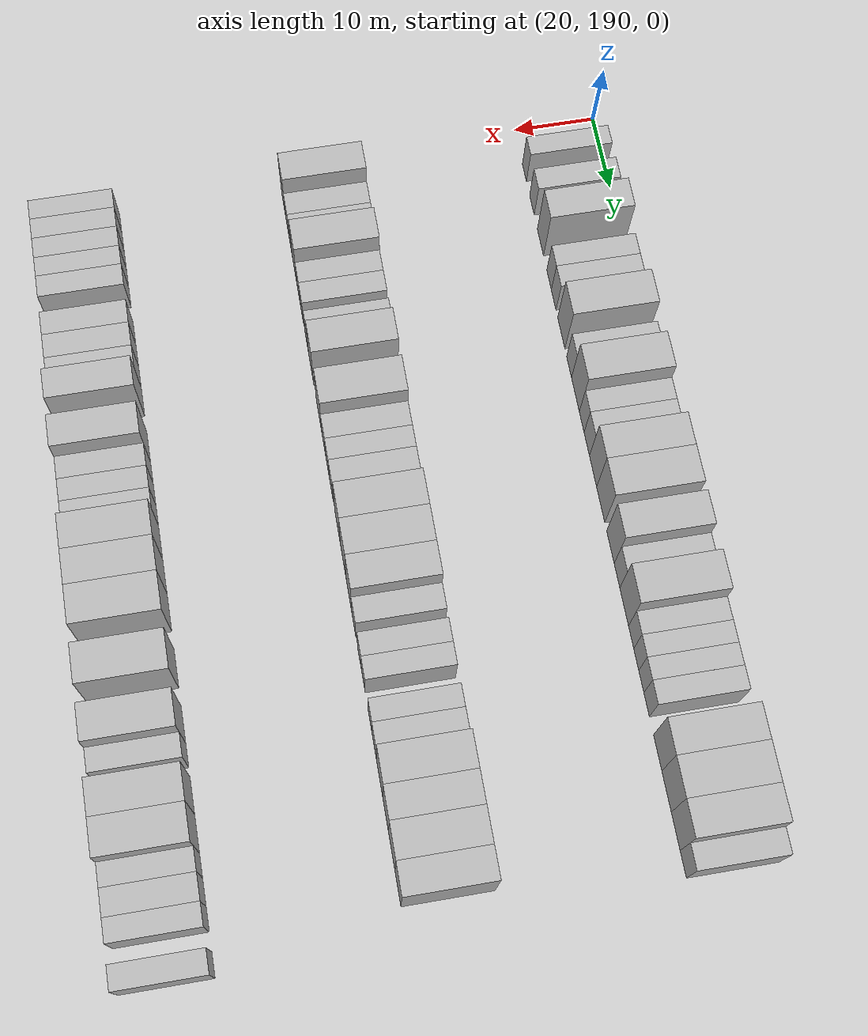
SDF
<sdf version="1.6">
 <world name="default">
  <model name="building_117">
   <static>1</static>
   <pose>25.0000 196.1999 0 0.000000 0.000000 0.000000</pose>
   <link name="link">
    <pose>0 0 3.00 0 0 0</pose>
    <collision name="collision"><geometry><box><size>10.0000 2.5108 6.0000</size></box></geometry></collision>
    <visual name="visual">
     <cast_shadows>0</cast_shadows>
     <geometry><box><size>10.0000 2.5108 6.0000</size></box></geometry>
     <material>
      <script>
       <uri>model://HANNAS_wall/materials/scripts</uri>
       <uri>model://HANNAS_wall/materials/textures</uri>
       <name>vrc/HANNAS_wall</name>
      </script>
     </material>
    </visual>
   </link>
  </model>
  <model name="building_118">
   <static>1</static>
   <pose>25.0000 200.8502 0 0.000000 0.000000 0.000000</pose>
   <link name="link">
    <pose>0 0 3.00 0 0 0</pose>
    <collision name="collision"><geometry><box><size>10.0000 2.7897 6.0000</size></box></geometry></collision>
    <visual name="visual">
     <cast_shadows>0</cast_shadows>
     <geometry><box><size>10.0000 2.7897 6.0000</size></box></geometry>
     <material>
      <script>
       <uri>model://HANNAS_wall/materials/scripts</uri>
       <uri>model://HANNAS_wall/materials/textures</uri>
       <name>vrc/HANNAS_wall</name>
      </script>
     </material>
    </visual>
   </link>
  </model>
  <model name="building_119">
   <static>1</static>
   <pose>25.0000 206.1018 0 0.000000 0.000000 0.000000</pose>
   <link name="link">
    <pose>0 0 4.50 0 0 0</pose>
    <collision name="collision"><geometry><box><size>10.0000 3.7135 9.0000</size></box></geometry></collision>
    <visual name="visual">
     <cast_shadows>0</cast_shadows>
     <geometry><box><size>10.0000 3.7135 9.0000</size></box></geometry>
     <material>
      <script>
       <uri>model://HANNAS_wall/materials/scripts</uri>
       <uri>model://HANNAS_wall/materials/textures</uri>
       <name>vrc/HANNAS_wall</name>
      </script>
     </material>
    </visual>
   </link>
  </model>
  <model name="building_120">
   <static>1</static>
   <pose>25.0000 211.3129 0 0.000000 0.000000 0.000000</pose>
   <link name="link">
    <pose>0 0 3.00 0 0 0</pose>
    <collision name="collision"><geometry><box><size>10.0000 2.7085 6.0000</size></box></geometry></collision>
    <visual name="visual">
     <cast_shadows>0</cast_shadows>
     <geometry><box><size>10.0000 2.7085 6.0000</size></box></geometry>
     <material>
      <script>
       <uri>model://HANNAS_wall/materials/scripts</uri>
       <uri>model://HANNAS_wall/materials/textures</uri>
       <name>vrc/HANNAS_wall</name>
      </script>
     </material>
    </visual>
   </link>
  </model>
  <model name="building_121">
   <static>1</static>
   <pose>25.0000 214.0283 0 0.000000 0.000000 0.000000</pose>
   <link name="link">
    <pose>0 0 3.00 0 0 0</pose>
    <collision name="collision"><geometry><box><size>10.0000 2.7224 6.0000</size></box></geometry></collision>
    <visual name="visual">
     <cast_shadows>0</cast_shadows>
     <geometry><box><size>10.0000 2.7224 6.0000</size></box></geometry>
     <material>
      <script>
       <uri>model://HANNAS_wall/materials/scripts</uri>
       <uri>model://HANNAS_wall/materials/textures</uri>
       <name>vrc/HANNAS_wall</name>
      </script>
     </material>
    </visual>
   </link>
  </model>
  <model name="building_122">
   <static>1</static>
   <pose>25.0000 218.4825 0 0.000000 0.000000 0.000000</pose>
   <link name="link">
    <pose>0 0 4.50 0 0 0</pose>
    <collision name="collision"><geometry><box><size>10.0000 4.1858 9.0000</size></box></geometry></collision>
    <visual name="visual">
     <cast_shadows>0</cast_shadows>
     <geometry><box><size>10.0000 4.1858 9.0000</size></box></geometry>
     <material>
      <script>
       <uri>model://HANNAS_wall/materials/scripts</uri>
       <uri>model://HANNAS_wall/materials/textures</uri>
       <name>vrc/HANNAS_wall</name>
      </script>
     </material>
    </visual>
   </link>
  </model>
  <model name="building_123">
   <static>1</static>
   <pose>25.0000 222.9684 0 0.000000 0.000000 0.000000</pose>
   <link name="link">
    <pose>0 0 3.00 0 0 0</pose>
    <collision name="collision"><geometry><box><size>10.0000 2.7861 6.0000</size></box></geometry></collision>
    <visual name="visual">
     <cast_shadows>0</cast_shadows>
     <geometry><box><size>10.0000 2.7861 6.0000</size></box></geometry>
     <material>
      <script>
       <uri>model://HANNAS_wall/materials/scripts</uri>
       <uri>model://HANNAS_wall/materials/textures</uri>
       <name>vrc/HANNAS_wall</name>
      </script>
     </material>
    </visual>
   </link>
  </model>
  <model name="building_124">
   <static>1</static>
   <pose>25.0000 226.5602 0 0.000000 0.000000 0.000000</pose>
   <link name="link">
    <pose>0 0 4.50 0 0 0</pose>
    <collision name="collision"><geometry><box><size>10.0000 4.3974 9.0000</size></box></geometry></collision>
    <visual name="visual">
     <cast_shadows>0</cast_shadows>
     <geometry><box><size>10.0000 4.3974 9.0000</size></box></geometry>
     <material>
      <script>
       <uri>model://HANNAS_wall/materials/scripts</uri>
       <uri>model://HANNAS_wall/materials/textures</uri>
       <name>vrc/HANNAS_wall</name>
      </script>
     </material>
    </visual>
   </link>
  </model>
  <model name="building_125">
   <static>1</static>
   <pose>25.0000 230.0820 0 0.000000 0.000000 0.000000</pose>
   <link name="link">
    <pose>0 0 3.00 0 0 0</pose>
    <collision name="collision"><geometry><box><size>10.0000 2.6462 6.0000</size></box></geometry></collision>
    <visual name="visual">
     <cast_shadows>0</cast_shadows>
     <geometry><box><size>10.0000 2.6462 6.0000</size></box></geometry>
     <material>
      <script>
       <uri>model://HANNAS_wall/materials/scripts</uri>
       <uri>model://HANNAS_wall/materials/textures</uri>
       <name>vrc/HANNAS_wall</name>
      </script>
     </material>
    </visual>
   </link>
  </model>
  <model name="building_126">
   <static>1</static>
   <pose>25.0000 232.8873 0 0.000000 0.000000 0.000000</pose>
   <link name="link">
    <pose>0 0 3.00 0 0 0</pose>
    <collision name="collision"><geometry><box><size>10.0000 2.9642 6.0000</size></box></geometry></collision>
    <visual name="visual">
     <cast_shadows>0</cast_shadows>
     <geometry><box><size>10.0000 2.9642 6.0000</size></box></geometry>
     <material>
      <script>
       <uri>model://HANNAS_wall/materials/scripts</uri>
       <uri>model://HANNAS_wall/materials/textures</uri>
       <name>vrc/HANNAS_wall</name>
      </script>
     </material>
    </visual>
   </link>
  </model>
  <model name="building_127">
   <static>1</static>
   <pose>25.0000 236.3215 0 0.000000 0.000000 0.000000</pose>
   <link name="link">
    <pose>0 0 4.50 0 0 0</pose>
    <collision name="collision"><geometry><box><size>10.0000 3.9041 9.0000</size></box></geometry></collision>
    <visual name="visual">
     <cast_shadows>0</cast_shadows>
     <geometry><box><size>10.0000 3.9041 9.0000</size></box></geometry>
     <material>
      <script>
       <uri>model://HANNAS_wall/materials/scripts</uri>
       <uri>model://HANNAS_wall/materials/textures</uri>
       <name>vrc/HANNAS_wall</name>
      </script>
     </material>
    </visual>
   </link>
  </model>
  <model name="building_128">
   <static>1</static>
   <pose>25.0000 240.4634 0 0.000000 0.000000 0.000000</pose>
   <link name="link">
    <pose>0 0 4.50 0 0 0</pose>
    <collision name="collision"><geometry><box><size>10.0000 4.3798 9.0000</size></box></geometry></collision>
    <visual name="visual">
     <cast_shadows>0</cast_shadows>
     <geometry><box><size>10.0000 4.3798 9.0000</size></box></geometry>
     <material>
      <script>
       <uri>model://HANNAS_wall/materials/scripts</uri>
       <uri>model://HANNAS_wall/materials/textures</uri>
       <name>vrc/HANNAS_wall</name>
      </script>
     </material>
    </visual>
   </link>
  </model>
  <model name="building_129">
   <static>1</static>
   <pose>25.0000 245.6209 0 0.000000 0.000000 0.000000</pose>
   <link name="link">
    <pose>0 0 4.50 0 0 0</pose>
    <collision name="collision"><geometry><box><size>10.0000 3.9352 9.0000</size></box></geometry></collision>
    <visual name="visual">
     <cast_shadows>0</cast_shadows>
     <geometry><box><size>10.0000 3.9352 9.0000</size></box></geometry>
     <material>
      <script>
       <uri>model://HANNAS_wall/materials/scripts</uri>
       <uri>model://HANNAS_wall/materials/textures</uri>
       <name>vrc/HANNAS_wall</name>
      </script>
     </material>
    </visual>
   </link>
  </model>
  <model name="building_130">
   <static>1</static>
   <pose>25.0000 249.0496 0 0.000000 0.000000 0.000000</pose>
   <link name="link">
    <pose>0 0 3.00 0 0 0</pose>
    <collision name="collision"><geometry><box><size>10.0000 2.9222 6.0000</size></box></geometry></collision>
    <visual name="visual">
     <cast_shadows>0</cast_shadows>
     <geometry><box><size>10.0000 2.9222 6.0000</size></box></geometry>
     <material>
      <script>
       <uri>model://HANNAS_wall/materials/scripts</uri>
       <uri>model://HANNAS_wall/materials/textures</uri>
       <name>vrc/HANNAS_wall</name>
      </script>
     </material>
    </visual>
   </link>
  </model>
  <model name="building_131">
   <static>1</static>
   <pose>25.0000 252.7315 0 0.000000 0.000000 0.000000</pose>
   <link name="link">
    <pose>0 0 4.50 0 0 0</pose>
    <collision name="collision"><geometry><box><size>10.0000 4.4417 9.0000</size></box></geometry></collision>
    <visual name="visual">
     <cast_shadows>0</cast_shadows>
     <geometry><box><size>10.0000 4.4417 9.0000</size></box></geometry>
     <material>
      <script>
       <uri>model://HANNAS_wall/materials/scripts</uri>
       <uri>model://HANNAS_wall/materials/textures</uri>
       <name>vrc/HANNAS_wall</name>
      </script>
     </material>
    </visual>
   </link>
  </model>
  <model name="building_132">
   <static>1</static>
   <pose>25.0000 256.2675 0 0.000000 0.000000 0.000000</pose>
   <link name="link">
    <pose>0 0 3.00 0 0 0</pose>
    <collision name="collision"><geometry><box><size>10.0000 2.6302 6.0000</size></box></geometry></collision>
    <visual name="visual">
     <cast_shadows>0</cast_shadows>
     <geometry><box><size>10.0000 2.6302 6.0000</size></box></geometry>
     <material>
      <script>
       <uri>model://HANNAS_wall/materials/scripts</uri>
       <uri>model://HANNAS_wall/materials/textures</uri>
       <name>vrc/HANNAS_wall</name>
      </script>
     </material>
    </visual>
   </link>
  </model>
  <model name="building_133">
   <static>1</static>
   <pose>25.0000 258.8365 0 0.000000 0.000000 0.000000</pose>
   <link name="link">
    <pose>0 0 3.00 0 0 0</pose>
    <collision name="collision"><geometry><box><size>10.0000 2.5078 6.0000</size></box></geometry></collision>
    <visual name="visual">
     <cast_shadows>0</cast_shadows>
     <geometry><box><size>10.0000 2.5078 6.0000</size></box></geometry>
     <material>
      <script>
       <uri>model://HANNAS_wall/materials/scripts</uri>
       <uri>model://HANNAS_wall/materials/textures</uri>
       <name>vrc/HANNAS_wall</name>
      </script>
     </material>
    </visual>
   </link>
  </model>
  <model name="building_134">
   <static>1</static>
   <pose>25.0000 261.3510 0 0.000000 0.000000 0.000000</pose>
   <link name="link">
    <pose>0 0 3.00 0 0 0</pose>
    <collision name="collision"><geometry><box><size>10.0000 2.5211 6.0000</size></box></geometry></collision>
    <visual name="visual">
     <cast_shadows>0</cast_shadows>
     <geometry><box><size>10.0000 2.5211 6.0000</size></box></geometry>
     <material>
      <script>
       <uri>model://HANNAS_wall/materials/scripts</uri>
       <uri>model://HANNAS_wall/materials/textures</uri>
       <name>vrc/HANNAS_wall</name>
      </script>
     </material>
    </visual>
   </link>
  </model>
  <model name="building_135">
   <static>1</static>
   <pose>25.0000 263.9515 0 0.000000 0.000000 0.000000</pose>
   <link name="link">
    <pose>0 0 3.00 0 0 0</pose>
    <collision name="collision"><geometry><box><size>10.0000 2.6798 6.0000</size></box></geometry></collision>
    <visual name="visual">
     <cast_shadows>0</cast_shadows>
     <geometry><box><size>10.0000 2.6798 6.0000</size></box></geometry>
     <material>
      <script>
       <uri>model://HANNAS_wall/materials/scripts</uri>
       <uri>model://HANNAS_wall/materials/textures</uri>
       <name>vrc/HANNAS_wall</name>
      </script>
     </material>
    </visual>
   </link>
  </model>
  <model name="building_136">
   <static>1</static>
   <pose>25.0000 269.2805 0 0.000000 0.000000 0.000000</pose>
   <link name="link">
    <pose>0 0 4.50 0 0 0</pose>
    <collision name="collision"><geometry><box><size>10.0000 3.9783 9.0000</size></box></geometry></collision>
    <visual name="visual">
     <cast_shadows>0</cast_shadows>
     <geometry><box><size>10.0000 3.9783 9.0000</size></box></geometry>
     <material>
      <script>
       <uri>model://HANNAS_wall/materials/scripts</uri>
       <uri>model://HANNAS_wall/materials/textures</uri>
       <name>vrc/HANNAS_wall</name>
      </script>
     </material>
    </visual>
   </link>
  </model>
  <model name="building_137">
   <static>1</static>
   <pose>25.0000 273.4937 0 0.000000 0.000000 0.000000</pose>
   <link name="link">
    <pose>0 0 4.50 0 0 0</pose>
    <collision name="collision"><geometry><box><size>10.0000 4.4482 9.0000</size></box></geometry></collision>
    <visual name="visual">
     <cast_shadows>0</cast_shadows>
     <geometry><box><size>10.0000 4.4482 9.0000</size></box></geometry>
     <material>
      <script>
       <uri>model://HANNAS_wall/materials/scripts</uri>
       <uri>model://HANNAS_wall/materials/textures</uri>
       <name>vrc/HANNAS_wall</name>
      </script>
     </material>
    </visual>
   </link>
  </model>
  <model name="building_138">
   <static>1</static>
   <pose>25.0000 277.7498 0 0.000000 0.000000 0.000000</pose>
   <link name="link">
    <pose>0 0 4.50 0 0 0</pose>
    <collision name="collision"><geometry><box><size>10.0000 4.0640 9.0000</size></box></geometry></collision>
    <visual name="visual">
     <cast_shadows>0</cast_shadows>
     <geometry><box><size>10.0000 4.0640 9.0000</size></box></geometry>
     <material>
      <script>
       <uri>model://HANNAS_wall/materials/scripts</uri>
       <uri>model://HANNAS_wall/materials/textures</uri>
       <name>vrc/HANNAS_wall</name>
      </script>
     </material>
    </visual>
   </link>
  </model>
  <model name="building_139">
   <static>1</static>
   <pose>25.0000 281.2172 0 0.000000 0.000000 0.000000</pose>
   <link name="link">
    <pose>0 0 3.00 0 0 0</pose>
    <collision name="collision"><geometry><box><size>10.0000 2.8707 6.0000</size></box></geometry></collision>
    <visual name="visual">
     <cast_shadows>0</cast_shadows>
     <geometry><box><size>10.0000 2.8707 6.0000</size></box></geometry>
     <material>
      <script>
       <uri>model://HANNAS_wall/materials/scripts</uri>
       <uri>model://HANNAS_wall/materials/textures</uri>
       <name>vrc/HANNAS_wall</name>
      </script>
     </material>
    </visual>
   </link>
  </model>
  <model name="building_264">
   <static>1</static>
   <pose>55.0000 195.9915 0 0.000000 0.000000 0.000000</pose>
   <link name="link">
    <pose>0 0 4.50 0 0 0</pose>
    <collision name="collision"><geometry><box><size>10.0000 3.6729 9.0000</size></box></geometry></collision>
    <visual name="visual">
     <cast_shadows>0</cast_shadows>
     <geometry><box><size>10.0000 3.6729 9.0000</size></box></geometry>
     <material>
      <script>
       <uri>model://HANNAS_wall/materials/scripts</uri>
       <uri>model://HANNAS_wall/materials/textures</uri>
       <name>vrc/HANNAS_wall</name>
      </script>
     </material>
    </visual>
   </link>
  </model>
  <model name="building_265">
   <static>1</static>
   <pose>55.0000 199.2742 0 0.000000 0.000000 0.000000</pose>
   <link name="link">
    <pose>0 0 3.00 0 0 0</pose>
    <collision name="collision"><geometry><box><size>10.0000 2.8926 6.0000</size></box></geometry></collision>
    <visual name="visual">
     <cast_shadows>0</cast_shadows>
     <geometry><box><size>10.0000 2.8926 6.0000</size></box></geometry>
     <material>
      <script>
       <uri>model://HANNAS_wall/materials/scripts</uri>
       <uri>model://HANNAS_wall/materials/textures</uri>
       <name>vrc/HANNAS_wall</name>
      </script>
     </material>
    </visual>
   </link>
  </model>
  <model name="building_266">
   <static>1</static>
   <pose>55.0000 201.9550 0 0.000000 0.000000 0.000000</pose>
   <link name="link">
    <pose>0 0 3.00 0 0 0</pose>
    <collision name="collision"><geometry><box><size>10.0000 2.4690 6.0000</size></box></geometry></collision>
    <visual name="visual">
     <cast_shadows>0</cast_shadows>
     <geometry><box><size>10.0000 2.4690 6.0000</size></box></geometry>
     <material>
      <script>
       <uri>model://HANNAS_wall/materials/scripts</uri>
       <uri>model://HANNAS_wall/materials/textures</uri>
       <name>vrc/HANNAS_wall</name>
      </script>
     </material>
    </visual>
   </link>
  </model>
  <model name="building_267">
   <static>1</static>
   <pose>55.0000 205.1781 0 0.000000 0.000000 0.000000</pose>
   <link name="link">
    <pose>0 0 4.50 0 0 0</pose>
    <collision name="collision"><geometry><box><size>10.0000 3.9773 9.0000</size></box></geometry></collision>
    <visual name="visual">
     <cast_shadows>0</cast_shadows>
     <geometry><box><size>10.0000 3.9773 9.0000</size></box></geometry>
     <material>
      <script>
       <uri>model://HANNAS_wall/materials/scripts</uri>
       <uri>model://HANNAS_wall/materials/textures</uri>
       <name>vrc/HANNAS_wall</name>
      </script>
     </material>
    </visual>
   </link>
  </model>
  <model name="building_268">
   <static>1</static>
   <pose>55.0000 208.5109 0 0.000000 0.000000 0.000000</pose>
   <link name="link">
    <pose>0 0 3.00 0 0 0</pose>
    <collision name="collision"><geometry><box><size>10.0000 2.6882 6.0000</size></box></geometry></collision>
    <visual name="visual">
     <cast_shadows>0</cast_shadows>
     <geometry><box><size>10.0000 2.6882 6.0000</size></box></geometry>
     <material>
      <script>
       <uri>model://HANNAS_wall/materials/scripts</uri>
       <uri>model://HANNAS_wall/materials/textures</uri>
       <name>vrc/HANNAS_wall</name>
      </script>
     </material>
    </visual>
   </link>
  </model>
  <model name="building_269">
   <static>1</static>
   <pose>55.0000 211.1974 0 0.000000 0.000000 0.000000</pose>
   <link name="link">
    <pose>0 0 3.00 0 0 0</pose>
    <collision name="collision"><geometry><box><size>10.0000 2.6848 6.0000</size></box></geometry></collision>
    <visual name="visual">
     <cast_shadows>0</cast_shadows>
     <geometry><box><size>10.0000 2.6848 6.0000</size></box></geometry>
     <material>
      <script>
       <uri>model://HANNAS_wall/materials/scripts</uri>
       <uri>model://HANNAS_wall/materials/textures</uri>
       <name>vrc/HANNAS_wall</name>
      </script>
     </material>
    </visual>
   </link>
  </model>
  <model name="building_270">
   <static>1</static>
   <pose>55.0000 214.9309 0 0.000000 0.000000 0.000000</pose>
   <link name="link">
    <pose>0 0 3.00 0 0 0</pose>
    <collision name="collision"><geometry><box><size>10.0000 2.7822 6.0000</size></box></geometry></collision>
    <visual name="visual">
     <cast_shadows>0</cast_shadows>
     <geometry><box><size>10.0000 2.7822 6.0000</size></box></geometry>
     <material>
      <script>
       <uri>model://HANNAS_wall/materials/scripts</uri>
       <uri>model://HANNAS_wall/materials/textures</uri>
       <name>vrc/HANNAS_wall</name>
      </script>
     </material>
    </visual>
   </link>
  </model>
  <model name="building_271">
   <static>1</static>
   <pose>55.0000 218.3244 0 0.000000 0.000000 0.000000</pose>
   <link name="link">
    <pose>0 0 4.50 0 0 0</pose>
    <collision name="collision"><geometry><box><size>10.0000 4.0047 9.0000</size></box></geometry></collision>
    <visual name="visual">
     <cast_shadows>0</cast_shadows>
     <geometry><box><size>10.0000 4.0047 9.0000</size></box></geometry>
     <material>
      <script>
       <uri>model://HANNAS_wall/materials/scripts</uri>
       <uri>model://HANNAS_wall/materials/textures</uri>
       <name>vrc/HANNAS_wall</name>
      </script>
     </material>
    </visual>
   </link>
  </model>
  <model name="building_272">
   <static>1</static>
   <pose>55.0000 224.4998 0 0.000000 0.000000 0.000000</pose>
   <link name="link">
    <pose>0 0 4.50 0 0 0</pose>
    <collision name="collision"><geometry><box><size>10.0000 4.3461 9.0000</size></box></geometry></collision>
    <visual name="visual">
     <cast_shadows>0</cast_shadows>
     <geometry><box><size>10.0000 4.3461 9.0000</size></box></geometry>
     <material>
      <script>
       <uri>model://HANNAS_wall/materials/scripts</uri>
       <uri>model://HANNAS_wall/materials/textures</uri>
       <name>vrc/HANNAS_wall</name>
      </script>
     </material>
    </visual>
   </link>
  </model>
  <model name="building_273">
   <static>1</static>
   <pose>55.0000 228.1534 0 0.000000 0.000000 0.000000</pose>
   <link name="link">
    <pose>0 0 3.00 0 0 0</pose>
    <collision name="collision"><geometry><box><size>10.0000 2.9610 6.0000</size></box></geometry></collision>
    <visual name="visual">
     <cast_shadows>0</cast_shadows>
     <geometry><box><size>10.0000 2.9610 6.0000</size></box></geometry>
     <material>
      <script>
       <uri>model://HANNAS_wall/materials/scripts</uri>
       <uri>model://HANNAS_wall/materials/textures</uri>
       <name>vrc/HANNAS_wall</name>
      </script>
     </material>
    </visual>
   </link>
  </model>
  <model name="building_274">
   <static>1</static>
   <pose>55.0000 230.9349 0 0.000000 0.000000 0.000000</pose>
   <link name="link">
    <pose>0 0 3.00 0 0 0</pose>
    <collision name="collision"><geometry><box><size>10.0000 2.6020 6.0000</size></box></geometry></collision>
    <visual name="visual">
     <cast_shadows>0</cast_shadows>
     <geometry><box><size>10.0000 2.6020 6.0000</size></box></geometry>
     <material>
      <script>
       <uri>model://HANNAS_wall/materials/scripts</uri>
       <uri>model://HANNAS_wall/materials/textures</uri>
       <name>vrc/HANNAS_wall</name>
      </script>
     </material>
    </visual>
   </link>
  </model>
  <model name="building_275">
   <static>1</static>
   <pose>55.0000 233.6565 0 0.000000 0.000000 0.000000</pose>
   <link name="link">
    <pose>0 0 3.00 0 0 0</pose>
    <collision name="collision"><geometry><box><size>10.0000 2.8411 6.0000</size></box></geometry></collision>
    <visual name="visual">
     <cast_shadows>0</cast_shadows>
     <geometry><box><size>10.0000 2.8411 6.0000</size></box></geometry>
     <material>
      <script>
       <uri>model://HANNAS_wall/materials/scripts</uri>
       <uri>model://HANNAS_wall/materials/textures</uri>
       <name>vrc/HANNAS_wall</name>
      </script>
     </material>
    </visual>
   </link>
  </model>
  <model name="building_276">
   <static>1</static>
   <pose>55.0000 238.1700 0 0.000000 0.000000 0.000000</pose>
   <link name="link">
    <pose>0 0 4.50 0 0 0</pose>
    <collision name="collision"><geometry><box><size>10.0000 4.1860 9.0000</size></box></geometry></collision>
    <visual name="visual">
     <cast_shadows>0</cast_shadows>
     <geometry><box><size>10.0000 4.1860 9.0000</size></box></geometry>
     <material>
      <script>
       <uri>model://HANNAS_wall/materials/scripts</uri>
       <uri>model://HANNAS_wall/materials/textures</uri>
       <name>vrc/HANNAS_wall</name>
      </script>
     </material>
    </visual>
   </link>
  </model>
  <model name="building_277">
   <static>1</static>
   <pose>55.0000 242.3569 0 0.000000 0.000000 0.000000</pose>
   <link name="link">
    <pose>0 0 4.50 0 0 0</pose>
    <collision name="collision"><geometry><box><size>10.0000 4.1878 9.0000</size></box></geometry></collision>
    <visual name="visual">
     <cast_shadows>0</cast_shadows>
     <geometry><box><size>10.0000 4.1878 9.0000</size></box></geometry>
     <material>
      <script>
       <uri>model://HANNAS_wall/materials/scripts</uri>
       <uri>model://HANNAS_wall/materials/textures</uri>
       <name>vrc/HANNAS_wall</name>
      </script>
     </material>
    </visual>
   </link>
  </model>
  <model name="building_278">
   <static>1</static>
   <pose>55.0000 246.3978 0 0.000000 0.000000 0.000000</pose>
   <link name="link">
    <pose>0 0 4.50 0 0 0</pose>
    <collision name="collision"><geometry><box><size>10.0000 3.8940 9.0000</size></box></geometry></collision>
    <visual name="visual">
     <cast_shadows>0</cast_shadows>
     <geometry><box><size>10.0000 3.8940 9.0000</size></box></geometry>
     <material>
      <script>
       <uri>model://HANNAS_wall/materials/scripts</uri>
       <uri>model://HANNAS_wall/materials/textures</uri>
       <name>vrc/HANNAS_wall</name>
      </script>
     </material>
    </visual>
   </link>
  </model>
  <model name="building_279">
   <static>1</static>
   <pose>55.0000 249.8201 0 0.000000 0.000000 0.000000</pose>
   <link name="link">
    <pose>0 0 3.00 0 0 0</pose>
    <collision name="collision"><geometry><box><size>10.0000 2.9507 6.0000</size></box></geometry></collision>
    <visual name="visual">
     <cast_shadows>0</cast_shadows>
     <geometry><box><size>10.0000 2.9507 6.0000</size></box></geometry>
     <material>
      <script>
       <uri>model://HANNAS_wall/materials/scripts</uri>
       <uri>model://HANNAS_wall/materials/textures</uri>
       <name>vrc/HANNAS_wall</name>
      </script>
     </material>
    </visual>
   </link>
  </model>
  <model name="building_280">
   <static>1</static>
   <pose>55.0000 253.6281 0 0.000000 0.000000 0.000000</pose>
   <link name="link">
    <pose>0 0 3.00 0 0 0</pose>
    <collision name="collision"><geometry><box><size>10.0000 2.6652 6.0000</size></box></geometry></collision>
    <visual name="visual">
     <cast_shadows>0</cast_shadows>
     <geometry><box><size>10.0000 2.6652 6.0000</size></box></geometry>
     <material>
      <script>
       <uri>model://HANNAS_wall/materials/scripts</uri>
       <uri>model://HANNAS_wall/materials/textures</uri>
       <name>vrc/HANNAS_wall</name>
      </script>
     </material>
    </visual>
   </link>
  </model>
  <model name="building_281">
   <static>1</static>
   <pose>55.0000 256.2607 0 0.000000 0.000000 0.000000</pose>
   <link name="link">
    <pose>0 0 3.00 0 0 0</pose>
    <collision name="collision"><geometry><box><size>10.0000 2.6000 6.0000</size></box></geometry></collision>
    <visual name="visual">
     <cast_shadows>0</cast_shadows>
     <geometry><box><size>10.0000 2.6000 6.0000</size></box></geometry>
     <material>
      <script>
       <uri>model://HANNAS_wall/materials/scripts</uri>
       <uri>model://HANNAS_wall/materials/textures</uri>
       <name>vrc/HANNAS_wall</name>
      </script>
     </material>
    </visual>
   </link>
  </model>
  <model name="building_282">
   <static>1</static>
   <pose>55.0000 260.8462 0 0.000000 0.000000 0.000000</pose>
   <link name="link">
    <pose>0 0 3.00 0 0 0</pose>
    <collision name="collision"><geometry><box><size>10.0000 2.5711 6.0000</size></box></geometry></collision>
    <visual name="visual">
     <cast_shadows>0</cast_shadows>
     <geometry><box><size>10.0000 2.5711 6.0000</size></box></geometry>
     <material>
      <script>
       <uri>model://HANNAS_wall/materials/scripts</uri>
       <uri>model://HANNAS_wall/materials/textures</uri>
       <name>vrc/HANNAS_wall</name>
      </script>
     </material>
    </visual>
   </link>
  </model>
  <model name="building_283">
   <static>1</static>
   <pose>55.0000 263.6288 0 0.000000 0.000000 0.000000</pose>
   <link name="link">
    <pose>0 0 3.00 0 0 0</pose>
    <collision name="collision"><geometry><box><size>10.0000 2.9941 6.0000</size></box></geometry></collision>
    <visual name="visual">
     <cast_shadows>0</cast_shadows>
     <geometry><box><size>10.0000 2.9941 6.0000</size></box></geometry>
     <material>
      <script>
       <uri>model://HANNAS_wall/materials/scripts</uri>
       <uri>model://HANNAS_wall/materials/textures</uri>
       <name>vrc/HANNAS_wall</name>
      </script>
     </material>
    </visual>
   </link>
  </model>
  <model name="building_284">
   <static>1</static>
   <pose>55.0000 267.1862 0 0.000000 0.000000 0.000000</pose>
   <link name="link">
    <pose>0 0 4.50 0 0 0</pose>
    <collision name="collision"><geometry><box><size>10.0000 4.1207 9.0000</size></box></geometry></collision>
    <visual name="visual">
     <cast_shadows>0</cast_shadows>
     <geometry><box><size>10.0000 4.1207 9.0000</size></box></geometry>
     <material>
      <script>
       <uri>model://HANNAS_wall/materials/scripts</uri>
       <uri>model://HANNAS_wall/materials/textures</uri>
       <name>vrc/HANNAS_wall</name>
      </script>
     </material>
    </visual>
   </link>
  </model>
  <model name="building_285">
   <static>1</static>
   <pose>55.0000 271.0863 0 0.000000 0.000000 0.000000</pose>
   <link name="link">
    <pose>0 0 4.50 0 0 0</pose>
    <collision name="collision"><geometry><box><size>10.0000 3.6795 9.0000</size></box></geometry></collision>
    <visual name="visual">
     <cast_shadows>0</cast_shadows>
     <geometry><box><size>10.0000 3.6795 9.0000</size></box></geometry>
     <material>
      <script>
       <uri>model://HANNAS_wall/materials/scripts</uri>
       <uri>model://HANNAS_wall/materials/textures</uri>
       <name>vrc/HANNAS_wall</name>
      </script>
     </material>
    </visual>
   </link>
  </model>
  <model name="building_286">
   <static>1</static>
   <pose>55.0000 274.9385 0 0.000000 0.000000 0.000000</pose>
   <link name="link">
    <pose>0 0 4.50 0 0 0</pose>
    <collision name="collision"><geometry><box><size>10.0000 4.0249 9.0000</size></box></geometry></collision>
    <visual name="visual">
     <cast_shadows>0</cast_shadows>
     <geometry><box><size>10.0000 4.0249 9.0000</size></box></geometry>
     <material>
      <script>
       <uri>model://HANNAS_wall/materials/scripts</uri>
       <uri>model://HANNAS_wall/materials/textures</uri>
       <name>vrc/HANNAS_wall</name>
      </script>
     </material>
    </visual>
   </link>
  </model>
  <model name="building_287">
   <static>1</static>
   <pose>55.0000 278.7676 0 0.000000 0.000000 0.000000</pose>
   <link name="link">
    <pose>0 0 4.50 0 0 0</pose>
    <collision name="collision"><geometry><box><size>10.0000 3.6335 9.0000</size></box></geometry></collision>
    <visual name="visual">
     <cast_shadows>0</cast_shadows>
     <geometry><box><size>10.0000 3.6335 9.0000</size></box></geometry>
     <material>
      <script>
       <uri>model://HANNAS_wall/materials/scripts</uri>
       <uri>model://HANNAS_wall/materials/textures</uri>
       <name>vrc/HANNAS_wall</name>
      </script>
     </material>
    </visual>
   </link>
  </model>
  <model name="building_412">
   <static>1</static>
   <pose>85.0000 195.0736 0 0.000000 0.000000 0.000000</pose>
   <link name="link">
    <pose>0 0 3.00 0 0 0</pose>
    <collision name="collision"><geometry><box><size>10.0000 2.5183 6.0000</size></box></geometry></collision>
    <visual name="visual">
     <cast_shadows>0</cast_shadows>
     <geometry><box><size>10.0000 2.5183 6.0000</size></box></geometry>
     <material>
      <script>
       <uri>model://HANNAS_wall/materials/scripts</uri>
       <uri>model://HANNAS_wall/materials/textures</uri>
       <name>vrc/HANNAS_wall</name>
      </script>
     </material>
    </visual>
   </link>
  </model>
  <model name="building_413">
   <static>1</static>
   <pose>85.0000 197.6329 0 0.000000 0.000000 0.000000</pose>
   <link name="link">
    <pose>0 0 3.00 0 0 0</pose>
    <collision name="collision"><geometry><box><size>10.0000 2.6001 6.0000</size></box></geometry></collision>
    <visual name="visual">
     <cast_shadows>0</cast_shadows>
     <geometry><box><size>10.0000 2.6001 6.0000</size></box></geometry>
     <material>
      <script>
       <uri>model://HANNAS_wall/materials/scripts</uri>
       <uri>model://HANNAS_wall/materials/textures</uri>
       <name>vrc/HANNAS_wall</name>
      </script>
     </material>
    </visual>
   </link>
  </model>
  <model name="building_414">
   <static>1</static>
   <pose>85.0000 200.2308 0 0.000000 0.000000 0.000000</pose>
   <link name="link">
    <pose>0 0 3.00 0 0 0</pose>
    <collision name="collision"><geometry><box><size>10.0000 2.5957 6.0000</size></box></geometry></collision>
    <visual name="visual">
     <cast_shadows>0</cast_shadows>
     <geometry><box><size>10.0000 2.5957 6.0000</size></box></geometry>
     <material>
      <script>
       <uri>model://HANNAS_wall/materials/scripts</uri>
       <uri>model://HANNAS_wall/materials/textures</uri>
       <name>vrc/HANNAS_wall</name>
      </script>
     </material>
    </visual>
   </link>
  </model>
  <model name="building_415">
   <static>1</static>
   <pose>85.0000 202.7539 0 0.000000 0.000000 0.000000</pose>
   <link name="link">
    <pose>0 0 3.00 0 0 0</pose>
    <collision name="collision"><geometry><box><size>10.0000 2.4505 6.0000</size></box></geometry></collision>
    <visual name="visual">
     <cast_shadows>0</cast_shadows>
     <geometry><box><size>10.0000 2.4505 6.0000</size></box></geometry>
     <material>
      <script>
       <uri>model://HANNAS_wall/materials/scripts</uri>
       <uri>model://HANNAS_wall/materials/textures</uri>
       <name>vrc/HANNAS_wall</name>
      </script>
     </material>
    </visual>
   </link>
  </model>
  <model name="building_416">
   <static>1</static>
   <pose>85.0000 205.3350 0 0.000000 0.000000 0.000000</pose>
   <link name="link">
    <pose>0 0 3.00 0 0 0</pose>
    <collision name="collision"><geometry><box><size>10.0000 2.7116 6.0000</size></box></geometry></collision>
    <visual name="visual">
     <cast_shadows>0</cast_shadows>
     <geometry><box><size>10.0000 2.7116 6.0000</size></box></geometry>
     <material>
      <script>
       <uri>model://HANNAS_wall/materials/scripts</uri>
       <uri>model://HANNAS_wall/materials/textures</uri>
       <name>vrc/HANNAS_wall</name>
      </script>
     </material>
    </visual>
   </link>
  </model>
  <model name="building_417">
   <static>1</static>
   <pose>85.0000 210.1547 0 0.000000 0.000000 0.000000</pose>
   <link name="link">
    <pose>0 0 3.00 0 0 0</pose>
    <collision name="collision"><geometry><box><size>10.0000 2.9279 6.0000</size></box></geometry></collision>
    <visual name="visual">
     <cast_shadows>0</cast_shadows>
     <geometry><box><size>10.0000 2.9279 6.0000</size></box></geometry>
     <material>
      <script>
       <uri>model://HANNAS_wall/materials/scripts</uri>
       <uri>model://HANNAS_wall/materials/textures</uri>
       <name>vrc/HANNAS_wall</name>
      </script>
     </material>
    </visual>
   </link>
  </model>
  <model name="building_418">
   <static>1</static>
   <pose>85.0000 213.0987 0 0.000000 0.000000 0.000000</pose>
   <link name="link">
    <pose>0 0 3.00 0 0 0</pose>
    <collision name="collision"><geometry><box><size>10.0000 2.9601 6.0000</size></box></geometry></collision>
    <visual name="visual">
     <cast_shadows>0</cast_shadows>
     <geometry><box><size>10.0000 2.9601 6.0000</size></box></geometry>
     <material>
      <script>
       <uri>model://HANNAS_wall/materials/scripts</uri>
       <uri>model://HANNAS_wall/materials/textures</uri>
       <name>vrc/HANNAS_wall</name>
      </script>
     </material>
    </visual>
   </link>
  </model>
  <model name="building_419">
   <static>1</static>
   <pose>85.0000 215.9820 0 0.000000 0.000000 0.000000</pose>
   <link name="link">
    <pose>0 0 3.00 0 0 0</pose>
    <collision name="collision"><geometry><box><size>10.0000 2.8066 6.0000</size></box></geometry></collision>
    <visual name="visual">
     <cast_shadows>0</cast_shadows>
     <geometry><box><size>10.0000 2.8066 6.0000</size></box></geometry>
     <material>
      <script>
       <uri>model://HANNAS_wall/materials/scripts</uri>
       <uri>model://HANNAS_wall/materials/textures</uri>
       <name>vrc/HANNAS_wall</name>
      </script>
     </material>
    </visual>
   </link>
  </model>
  <model name="building_420">
   <static>1</static>
   <pose>85.0000 219.1917 0 0.000000 0.000000 0.000000</pose>
   <link name="link">
    <pose>0 0 4.50 0 0 0</pose>
    <collision name="collision"><geometry><box><size>10.0000 3.6126 9.0000</size></box></geometry></collision>
    <visual name="visual">
     <cast_shadows>0</cast_shadows>
     <geometry><box><size>10.0000 3.6126 9.0000</size></box></geometry>
     <material>
      <script>
       <uri>model://HANNAS_wall/materials/scripts</uri>
       <uri>model://HANNAS_wall/materials/textures</uri>
       <name>vrc/HANNAS_wall</name>
      </script>
     </material>
    </visual>
   </link>
  </model>
  <model name="building_421">
   <static>1</static>
   <pose>85.0000 224.9136 0 0.000000 0.000000 0.000000</pose>
   <link name="link">
    <pose>0 0 4.50 0 0 0</pose>
    <collision name="collision"><geometry><box><size>10.0000 3.8313 9.0000</size></box></geometry></collision>
    <visual name="visual">
     <cast_shadows>0</cast_shadows>
     <geometry><box><size>10.0000 3.8313 9.0000</size></box></geometry>
     <material>
      <script>
       <uri>model://HANNAS_wall/materials/scripts</uri>
       <uri>model://HANNAS_wall/materials/textures</uri>
       <name>vrc/HANNAS_wall</name>
      </script>
     </material>
    </visual>
   </link>
  </model>
  <model name="building_422">
   <static>1</static>
   <pose>85.0000 228.1754 0 0.000000 0.000000 0.000000</pose>
   <link name="link">
    <pose>0 0 3.00 0 0 0</pose>
    <collision name="collision"><geometry><box><size>10.0000 2.6923 6.0000</size></box></geometry></collision>
    <visual name="visual">
     <cast_shadows>0</cast_shadows>
     <geometry><box><size>10.0000 2.6923 6.0000</size></box></geometry>
     <material>
      <script>
       <uri>model://HANNAS_wall/materials/scripts</uri>
       <uri>model://HANNAS_wall/materials/textures</uri>
       <name>vrc/HANNAS_wall</name>
      </script>
     </material>
    </visual>
   </link>
  </model>
  <model name="building_423">
   <static>1</static>
   <pose>85.0000 230.8492 0 0.000000 0.000000 0.000000</pose>
   <link name="link">
    <pose>0 0 3.00 0 0 0</pose>
    <collision name="collision"><geometry><box><size>10.0000 2.6553 6.0000</size></box></geometry></collision>
    <visual name="visual">
     <cast_shadows>0</cast_shadows>
     <geometry><box><size>10.0000 2.6553 6.0000</size></box></geometry>
     <material>
      <script>
       <uri>model://HANNAS_wall/materials/scripts</uri>
       <uri>model://HANNAS_wall/materials/textures</uri>
       <name>vrc/HANNAS_wall</name>
      </script>
     </material>
    </visual>
   </link>
  </model>
  <model name="building_424">
   <static>1</static>
   <pose>85.0000 233.4393 0 0.000000 0.000000 0.000000</pose>
   <link name="link">
    <pose>0 0 3.00 0 0 0</pose>
    <collision name="collision"><geometry><box><size>10.0000 2.5250 6.0000</size></box></geometry></collision>
    <visual name="visual">
     <cast_shadows>0</cast_shadows>
     <geometry><box><size>10.0000 2.5250 6.0000</size></box></geometry>
     <material>
      <script>
       <uri>model://HANNAS_wall/materials/scripts</uri>
       <uri>model://HANNAS_wall/materials/textures</uri>
       <name>vrc/HANNAS_wall</name>
      </script>
     </material>
    </visual>
   </link>
  </model>
  <model name="building_425">
   <static>1</static>
   <pose>85.0000 236.7359 0 0.000000 0.000000 0.000000</pose>
   <link name="link">
    <pose>0 0 4.50 0 0 0</pose>
    <collision name="collision"><geometry><box><size>10.0000 4.0682 9.0000</size></box></geometry></collision>
    <visual name="visual">
     <cast_shadows>0</cast_shadows>
     <geometry><box><size>10.0000 4.0682 9.0000</size></box></geometry>
     <material>
      <script>
       <uri>model://HANNAS_wall/materials/scripts</uri>
       <uri>model://HANNAS_wall/materials/textures</uri>
       <name>vrc/HANNAS_wall</name>
      </script>
     </material>
    </visual>
   </link>
  </model>
  <model name="building_426">
   <static>1</static>
   <pose>85.0000 240.7904 0 0.000000 0.000000 0.000000</pose>
   <link name="link">
    <pose>0 0 4.50 0 0 0</pose>
    <collision name="collision"><geometry><box><size>10.0000 4.0407 9.0000</size></box></geometry></collision>
    <visual name="visual">
     <cast_shadows>0</cast_shadows>
     <geometry><box><size>10.0000 4.0407 9.0000</size></box></geometry>
     <material>
      <script>
       <uri>model://HANNAS_wall/materials/scripts</uri>
       <uri>model://HANNAS_wall/materials/textures</uri>
       <name>vrc/HANNAS_wall</name>
      </script>
     </material>
    </visual>
   </link>
  </model>
  <model name="building_427">
   <static>1</static>
   <pose>85.0000 245.0192 0 0.000000 0.000000 0.000000</pose>
   <link name="link">
    <pose>0 0 4.50 0 0 0</pose>
    <collision name="collision"><geometry><box><size>10.0000 4.4170 9.0000</size></box></geometry></collision>
    <visual name="visual">
     <cast_shadows>0</cast_shadows>
     <geometry><box><size>10.0000 4.4170 9.0000</size></box></geometry>
     <material>
      <script>
       <uri>model://HANNAS_wall/materials/scripts</uri>
       <uri>model://HANNAS_wall/materials/textures</uri>
       <name>vrc/HANNAS_wall</name>
      </script>
     </material>
    </visual>
   </link>
  </model>
  <model name="building_428">
   <static>1</static>
   <pose>85.0000 251.4660 0 0.000000 0.000000 0.000000</pose>
   <link name="link">
    <pose>0 0 4.50 0 0 0</pose>
    <collision name="collision"><geometry><box><size>10.0000 4.4767 9.0000</size></box></geometry></collision>
    <visual name="visual">
     <cast_shadows>0</cast_shadows>
     <geometry><box><size>10.0000 4.4767 9.0000</size></box></geometry>
     <material>
      <script>
       <uri>model://HANNAS_wall/materials/scripts</uri>
       <uri>model://HANNAS_wall/materials/textures</uri>
       <name>vrc/HANNAS_wall</name>
      </script>
     </material>
    </visual>
   </link>
  </model>
  <model name="building_429">
   <static>1</static>
   <pose>85.0000 257.7684 0 0.000000 0.000000 0.000000</pose>
   <link name="link">
    <pose>0 0 4.50 0 0 0</pose>
    <collision name="collision"><geometry><box><size>10.0000 4.1280 9.0000</size></box></geometry></collision>
    <visual name="visual">
     <cast_shadows>0</cast_shadows>
     <geometry><box><size>10.0000 4.1280 9.0000</size></box></geometry>
     <material>
      <script>
       <uri>model://HANNAS_wall/materials/scripts</uri>
       <uri>model://HANNAS_wall/materials/textures</uri>
       <name>vrc/HANNAS_wall</name>
      </script>
     </material>
    </visual>
   </link>
  </model>
  <model name="building_430">
   <static>1</static>
   <pose>85.0000 261.1764 0 0.000000 0.000000 0.000000</pose>
   <link name="link">
    <pose>0 0 3.00 0 0 0</pose>
    <collision name="collision"><geometry><box><size>10.0000 2.6881 6.0000</size></box></geometry></collision>
    <visual name="visual">
     <cast_shadows>0</cast_shadows>
     <geometry><box><size>10.0000 2.6881 6.0000</size></box></geometry>
     <material>
      <script>
       <uri>model://HANNAS_wall/materials/scripts</uri>
       <uri>model://HANNAS_wall/materials/textures</uri>
       <name>vrc/HANNAS_wall</name>
      </script>
     </material>
    </visual>
   </link>
  </model>
  <model name="building_431">
   <static>1</static>
   <pose>85.0000 265.5403 0 0.000000 0.000000 0.000000</pose>
   <link name="link">
    <pose>0 0 4.50 0 0 0</pose>
    <collision name="collision"><geometry><box><size>10.0000 4.0398 9.0000</size></box></geometry></collision>
    <visual name="visual">
     <cast_shadows>0</cast_shadows>
     <geometry><box><size>10.0000 4.0398 9.0000</size></box></geometry>
     <material>
      <script>
       <uri>model://HANNAS_wall/materials/scripts</uri>
       <uri>model://HANNAS_wall/materials/textures</uri>
       <name>vrc/HANNAS_wall</name>
      </script>
     </material>
    </visual>
   </link>
  </model>
  <model name="building_432">
   <static>1</static>
   <pose>85.0000 269.6225 0 0.000000 0.000000 0.000000</pose>
   <link name="link">
    <pose>0 0 4.50 0 0 0</pose>
    <collision name="collision"><geometry><box><size>10.0000 4.1245 9.0000</size></box></geometry></collision>
    <visual name="visual">
     <cast_shadows>0</cast_shadows>
     <geometry><box><size>10.0000 4.1245 9.0000</size></box></geometry>
     <material>
      <script>
       <uri>model://HANNAS_wall/materials/scripts</uri>
       <uri>model://HANNAS_wall/materials/textures</uri>
       <name>vrc/HANNAS_wall</name>
      </script>
     </material>
    </visual>
   </link>
  </model>
  <model name="building_433">
   <static>1</static>
   <pose>85.0000 272.9823 0 0.000000 0.000000 0.000000</pose>
   <link name="link">
    <pose>0 0 3.00 0 0 0</pose>
    <collision name="collision"><geometry><box><size>10.0000 2.5952 6.0000</size></box></geometry></collision>
    <visual name="visual">
     <cast_shadows>0</cast_shadows>
     <geometry><box><size>10.0000 2.5952 6.0000</size></box></geometry>
     <material>
      <script>
       <uri>model://HANNAS_wall/materials/scripts</uri>
       <uri>model://HANNAS_wall/materials/textures</uri>
       <name>vrc/HANNAS_wall</name>
      </script>
     </material>
    </visual>
   </link>
  </model>
  <model name="building_434">
   <static>1</static>
   <pose>85.0000 275.7587 0 0.000000 0.000000 0.000000</pose>
   <link name="link">
    <pose>0 0 3.00 0 0 0</pose>
    <collision name="collision"><geometry><box><size>10.0000 2.9576 6.0000</size></box></geometry></collision>
    <visual name="visual">
     <cast_shadows>0</cast_shadows>
     <geometry><box><size>10.0000 2.9576 6.0000</size></box></geometry>
     <material>
      <script>
       <uri>model://HANNAS_wall/materials/scripts</uri>
       <uri>model://HANNAS_wall/materials/textures</uri>
       <name>vrc/HANNAS_wall</name>
      </script>
     </material>
    </visual>
   </link>
  </model>
  <model name="building_435">
   <static>1</static>
   <pose>85.0000 278.5249 0 0.000000 0.000000 0.000000</pose>
   <link name="link">
    <pose>0 0 3.00 0 0 0</pose>
    <collision name="collision"><geometry><box><size>10.0000 2.5748 6.0000</size></box></geometry></collision>
    <visual name="visual">
     <cast_shadows>0</cast_shadows>
     <geometry><box><size>10.0000 2.5748 6.0000</size></box></geometry>
     <material>
      <script>
       <uri>model://HANNAS_wall/materials/scripts</uri>
       <uri>model://HANNAS_wall/materials/textures</uri>
       <name>vrc/HANNAS_wall</name>
      </script>
     </material>
    </visual>
   </link>
  </model>
  <model name="building_436">
   <static>1</static>
   <pose>85.0000 283.1425 0 0.000000 0.000000 0.000000</pose>
   <link name="link">
    <pose>0 0 3.00 0 0 0</pose>
    <collision name="collision"><geometry><box><size>10.0000 2.6603 6.0000</size></box></geometry></collision>
    <visual name="visual">
     <cast_shadows>0</cast_shadows>
     <geometry><box><size>10.0000 2.6603 6.0000</size></box></geometry>
     <material>
      <script>
       <uri>model://HANNAS_wall/materials/scripts</uri>
       <uri>model://HANNAS_wall/materials/textures</uri>
       <name>vrc/HANNAS_wall</name>
      </script>
     </material>
    </visual>
   </link>
  </model>
 </world>
</sdf>
